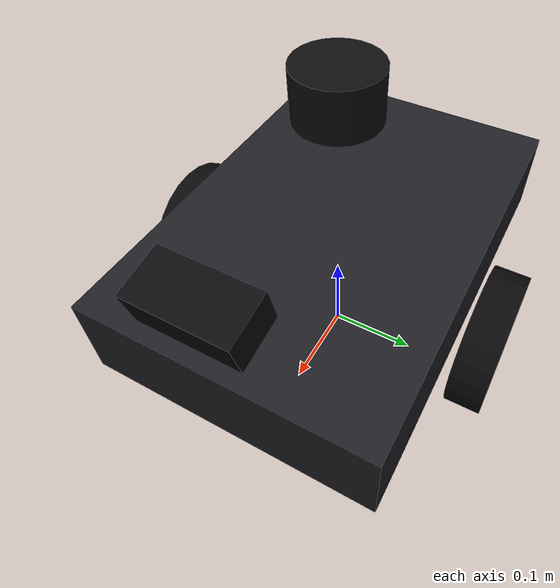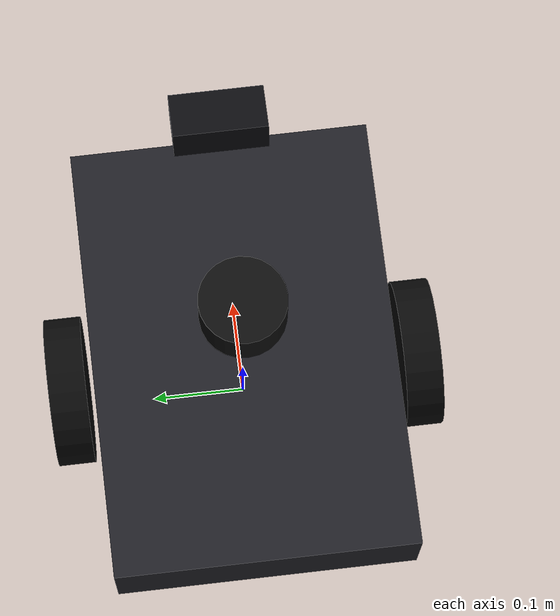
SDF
<?xml version="1.0"?>
<sdf version="1.10">
  <!--
    这个模型不是四足动力学模型，只是独立仿真包内的传感器测试载体。它提供标准
    /cmd_vel、/odom、/scan、/imu/data、RGB 图像和深度点云，便于在真机运动控制完成前
    测试 SLAM/Nav2/OpenCV 数据链。不得用其运动性能评价真实机器狗的越障能力。
  -->
  <model name="sensor_test_base">
    <self_collide>false</self_collide>
    <allow_auto_disable>false</allow_auto_disable>

    <link name="base_link">
      <pose>0 0 0.14 0 0 0</pose>
      <inertial>
        <mass>8.0</mass>
        <inertia>
          <ixx>0.085</ixx><iyy>0.140</iyy><izz>0.195</izz>
          <ixy>0</ixy><ixz>0</ixz><iyz>0</iyz>
        </inertia>
      </inertial>
      <collision name="chassis_collision">
        <geometry><box><size>0.46 0.32 0.10</size></box></geometry>
        <surface><friction><ode><mu>0.8</mu><mu2>0.8</mu2></ode></friction></surface>
      </collision>
      <visual name="chassis_visual">
        <geometry><box><size>0.46 0.32 0.10</size></box></geometry>
        <material><ambient>0.08 0.08 0.09 1</ambient><diffuse>0.12 0.12 0.14 1</diffuse></material>
      </visual>
    </link>

    <link name="left_wheel">
      <!--
        link frame 与车体保持同向，因此 joint 的 Y 轴就是实际轮轴。圆柱默认沿 Z 轴，
        只旋转 visual/collision 几何到 Y 轴；若旋转整个 link，joint 的局部 Y 会被一起
        转到竖直方向，表现为轮子在地面绕圈而非向前滚动。
      -->
      <pose>0 0.19 0.08 0 0 0</pose>
      <inertial><mass>0.4</mass><inertia><ixx>0.0013</ixx><iyy>0.0025</iyy><izz>0.0013</izz><ixy>0</ixy><ixz>0</ixz><iyz>0</iyz></inertia></inertial>
      <collision name="collision"><pose>0 0 0 1.570796 0 0</pose><geometry><cylinder><radius>0.08</radius><length>0.04</length></cylinder></geometry></collision>
      <visual name="visual"><pose>0 0 0 1.570796 0 0</pose><geometry><cylinder><radius>0.08</radius><length>0.04</length></cylinder></geometry><material><diffuse>0.03 0.03 0.03 1</diffuse></material></visual>
    </link>
    <link name="right_wheel">
      <pose>0 -0.19 0.08 0 0 0</pose>
      <inertial><mass>0.4</mass><inertia><ixx>0.0013</ixx><iyy>0.0025</iyy><izz>0.0013</izz><ixy>0</ixy><ixz>0</ixz><iyz>0</iyz></inertia></inertial>
      <collision name="collision"><pose>0 0 0 1.570796 0 0</pose><geometry><cylinder><radius>0.08</radius><length>0.04</length></cylinder></geometry></collision>
      <visual name="visual"><pose>0 0 0 1.570796 0 0</pose><geometry><cylinder><radius>0.08</radius><length>0.04</length></cylinder></geometry><material><diffuse>0.03 0.03 0.03 1</diffuse></material></visual>
    </link>
    <joint name="left_wheel_joint" type="revolute">
      <parent>base_link</parent><child>left_wheel</child>
      <axis><xyz>0 1 0</xyz><limit><lower>-1e16</lower><upper>1e16</upper></limit></axis>
    </joint>
    <joint name="right_wheel_joint" type="revolute">
      <parent>base_link</parent><child>right_wheel</child>
      <axis><xyz>0 1 0</xyz><limit><lower>-1e16</lower><upper>1e16</upper></limit></axis>
    </joint>

    <link name="caster_link">
      <pose>-0.17 0 0.045 0 0 0</pose>
      <inertial><mass>0.15</mass><inertia><ixx>0.0002</ixx><iyy>0.0002</iyy><izz>0.0002</izz><ixy>0</ixy><ixz>0</ixz><iyz>0</iyz></inertia></inertial>
      <collision name="collision"><geometry><sphere><radius>0.045</radius></sphere></geometry><surface><friction><ode><mu>0.05</mu><mu2>0.05</mu2></ode></friction></surface></collision>
      <visual name="visual"><geometry><sphere><radius>0.045</radius></sphere></geometry><material><diffuse>0.2 0.2 0.2 1</diffuse></material></visual>
    </link>
    <joint name="caster_fixed" type="ball"><parent>base_link</parent><child>caster_link</child></joint>

    <link name="lidar_link">
      <pose>0 0 0.34 0 0 0</pose>
      <inertial><mass>0.15</mass><inertia><ixx>0.0002</ixx><iyy>0.0002</iyy><izz>0.0002</izz><ixy>0</ixy><ixz>0</ixz><iyz>0</iyz></inertia></inertial>
      <visual name="visual"><geometry><cylinder><radius>0.045</radius><length>0.055</length></cylinder></geometry><material><diffuse>0.05 0.05 0.05 1</diffuse></material></visual>
      <sensor name="lidar" type="gpu_lidar">
        <topic>/scan</topic><update_rate>12</update_rate><gz_frame_id>lidar_link</gz_frame_id>
        <lidar>
          <scan><horizontal><samples>720</samples><resolution>1</resolution><min_angle>-3.141593</min_angle><max_angle>3.141593</max_angle></horizontal></scan>
          <range><min>0.08</min><max>20.0</max><resolution>0.01</resolution></range>
          <noise><type>gaussian</type><mean>0</mean><stddev>0.005</stddev></noise>
        </lidar>
        <always_on>true</always_on><visualize>true</visualize>
      </sensor>
    </link>
    <joint name="lidar_fixed" type="fixed"><parent>base_link</parent><child>lidar_link</child></joint>

    <!--
      IMU 不是当前 2D SLAM Toolbox 的强制输入，但保留标准 /imu/data 便于检查时间同步、
      姿态显示，以及日后把真机状态估计接到同一接口。噪声量级只用于算法健壮性测试。
    -->
    <link name="imu_link">
      <pose>0 0 0.22 0 0 0</pose>
      <inertial><mass>0.05</mass><inertia><ixx>0.00005</ixx><iyy>0.00005</iyy><izz>0.00005</izz><ixy>0</ixy><ixz>0</ixz><iyz>0</iyz></inertia></inertial>
      <sensor name="imu" type="imu">
        <topic>/imu/data</topic><update_rate>100</update_rate><gz_frame_id>imu_link</gz_frame_id>
        <imu>
          <angular_velocity>
            <x><noise type="gaussian"><mean>0</mean><stddev>0.0002</stddev></noise></x>
            <y><noise type="gaussian"><mean>0</mean><stddev>0.0002</stddev></noise></y>
            <z><noise type="gaussian"><mean>0</mean><stddev>0.0002</stddev></noise></z>
          </angular_velocity>
          <linear_acceleration>
            <x><noise type="gaussian"><mean>0</mean><stddev>0.017</stddev></noise></x>
            <y><noise type="gaussian"><mean>0</mean><stddev>0.017</stddev></noise></y>
            <z><noise type="gaussian"><mean>0</mean><stddev>0.017</stddev></noise></z>
          </linear_acceleration>
        </imu>
        <always_on>true</always_on>
      </sensor>
    </link>
    <joint name="imu_fixed" type="fixed"><parent>base_link</parent><child>imu_link</child></joint>

    <link name="camera_link">
      <!-- 向下俯约 11.5°，覆盖机器人前方地面、台阶和横杆。 -->
      <pose>0.22 0 0.28 0 0.20 0</pose>
      <inertial><mass>0.18</mass><inertia><ixx>0.0003</ixx><iyy>0.0003</iyy><izz>0.0003</izz><ixy>0</ixy><ixz>0</ixz><iyz>0</iyz></inertia></inertial>
      <visual name="visual"><geometry><box><size>0.05 0.10 0.04</size></box></geometry><material><diffuse>0.04 0.04 0.05 1</diffuse></material></visual>
      <sensor name="rgbd" type="rgbd_camera">
        <topic>/camera</topic><update_rate>15</update_rate><gz_frame_id>camera_optical_frame</gz_frame_id>
        <camera>
          <horizontal_fov>1.396263</horizontal_fov>
          <image><width>640</width><height>480</height><format>R8G8B8</format></image>
          <clip><near>0.12</near><far>8.0</far></clip>
          <depth_camera><clip><near>0.12</near><far>8.0</far></clip></depth_camera>
          <!-- ROS 光学约定：+Z 向前、+X 向右、+Y 向下。 -->
          <optical_frame_id>camera_optical_frame</optical_frame_id>
        </camera>
        <always_on>true</always_on><visualize>true</visualize>
      </sensor>
    </link>
    <joint name="camera_fixed" type="fixed"><parent>base_link</parent><child>camera_link</child></joint>

    <plugin filename="gz-sim-diff-drive-system" name="gz::sim::systems::DiffDrive">
      <left_joint>left_wheel_joint</left_joint><right_joint>right_wheel_joint</right_joint>
      <wheel_separation>0.38</wheel_separation><wheel_radius>0.08</wheel_radius>
      <topic>/cmd_vel</topic><odom_topic>/odom</odom_topic><tf_topic>/tf</tf_topic>
      <frame_id>odom</frame_id><child_frame_id>base_link</child_frame_id>
      <odom_publish_frequency>30</odom_publish_frequency>
      <max_linear_acceleration>0.8</max_linear_acceleration><max_angular_acceleration>1.5</max_angular_acceleration>
    </plugin>
  </model>
</sdf>
